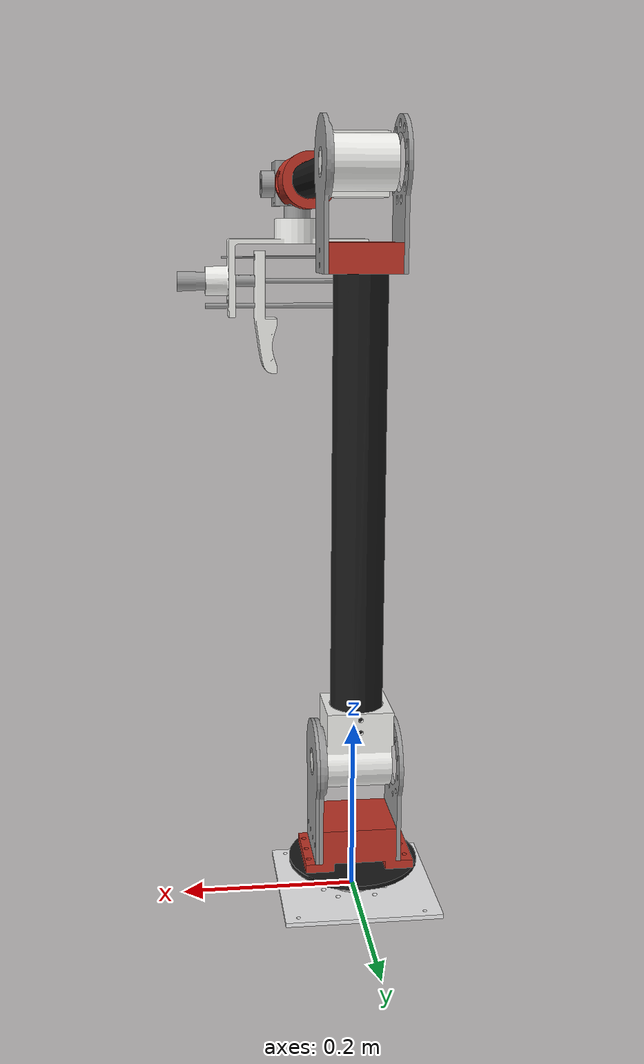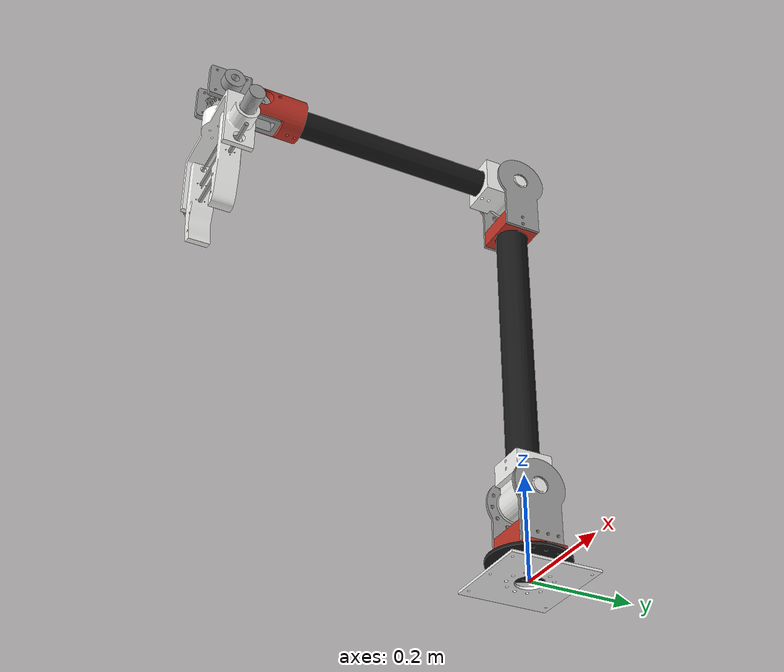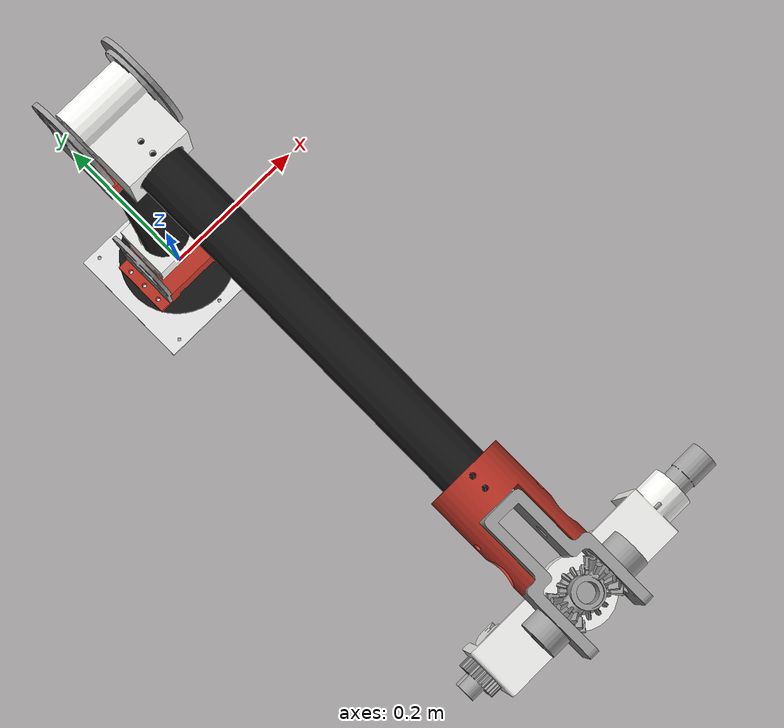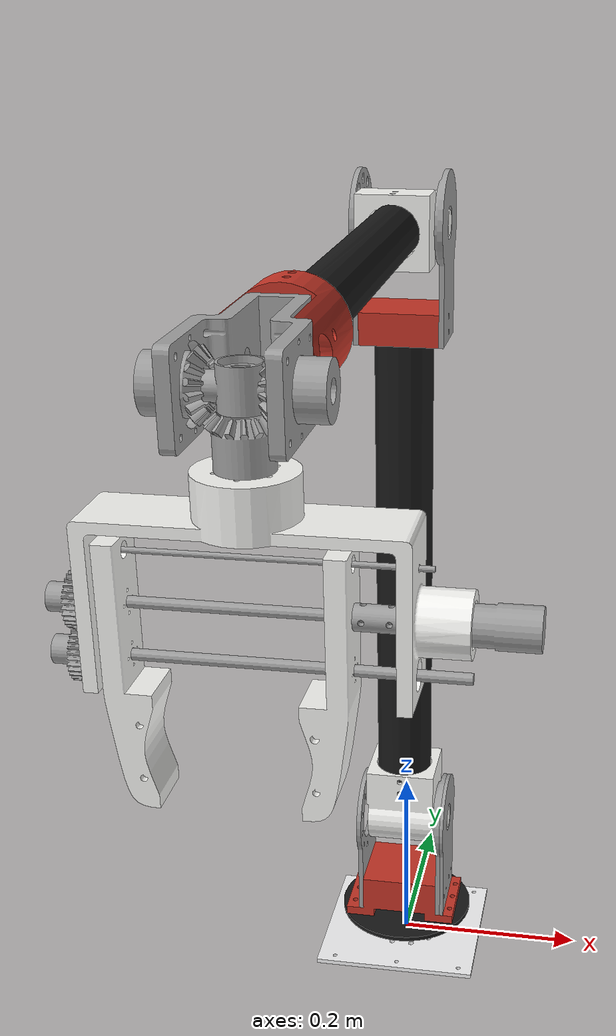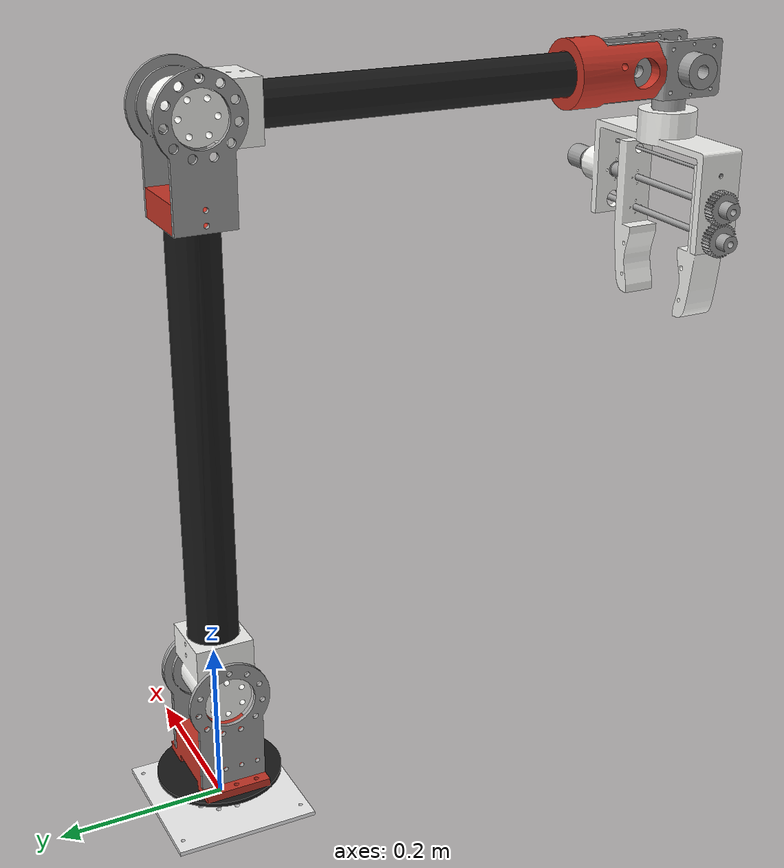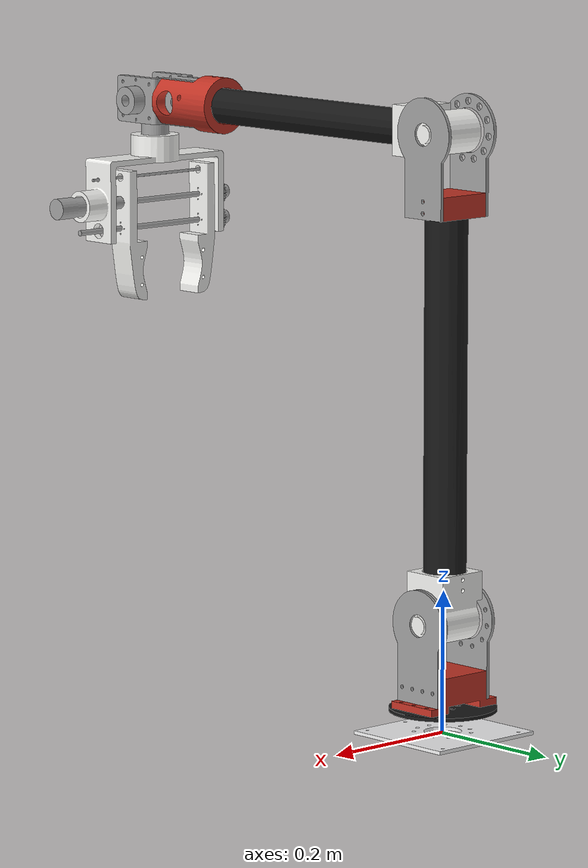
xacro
<?xml version="1.0"?>
<robot xmlns:xacro="http://www.ros.org/wiki/xacro" name="newmanip_description">
    <xacro:arg name="initial_positions_file" default="initial_positions.yaml" />

    <!-- Import newmanip_description urdf file -->
    <xacro:include filename="$(find newmanip_description)/urdf/new_manipulator_urdf.urdf" />

    <!-- Import control_xacro -->
    <xacro:include filename="newmanip_description.ros2_control.xacro" />

    <xacro:newmanip_description_ros2_control name="FakeSystem" initial_positions_file="$(arg initial_positions_file)"/>

</robot>

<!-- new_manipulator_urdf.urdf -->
<robot name="newmanip_description">

  <link name="base_link"/>
  <joint name="base_to_base_plate" type="fixed">
    <parent link="base_link"/>
    <child link="rigid_base_plate"/>
    <origin xyz="0 0 0" rpy="0 0 0"/>
  </joint>

  <link name="rigid_base_plate">
    <inertial>
      <origin xyz="-0.00224854905210758 -2.22044604925031E-16 -1.11022302462516E-16" rpy="0 0 0" />
      <mass value="0.139707136084498" />
      <inertia ixx="0.000362153855961995" ixy="-1.86445498629699E-19" ixz="6.69074444268395E-18" iyy="0.000407966760717313" iyz="-2.52141086441536E-18" izz="0.000769538503612289" />
    </inertial>
    <visual>
      <origin xyz="0 0 0" rpy="0 0 0" />
      <geometry>
        <mesh filename="package://newmanip_description/meshes/rigid_base_plate.STL" />
      </geometry>
      <material name="">
        <color rgba="0.96078431372549 0.96078431372549 0.964705882352941 1" />
      </material>
    </visual>
    <collision>
      <origin xyz="0 0 0" rpy="0 0 0" />
      <geometry>
        <mesh filename="package://newmanip_description/meshes/rigid_base_plate.STL" />
      </geometry>
    </collision>
  </link>
  <link name="manipulator_base_plate">
    <inertial>
      <origin xyz="1.22886286373358E-05 1.11022302462516E-16 1.11022302462516E-16" rpy="0 0 0" />
      <mass value="0.0862820052494155" />
      <inertia ixx="0.000123802300064541" ixy="-2.58850064594347E-19" ixz="1.72303453251338E-18" iyy="0.000121470538062705" iyz="-8.61839529210846E-19" izz="0.00024491332977204" />
    </inertial>
    <visual>
      <origin xyz="0 0 0" rpy="0 0 0" />
      <geometry>
        <mesh filename="package://newmanip_description/meshes/manipulator_base_plate.STL" />
      </geometry>
      <material name="">
        <color rgba="0.0980392156862745 0.0980392156862745 0.0980392156862745 1" />
      </material>
    </visual>
    <collision>
      <origin xyz="0 0 0" rpy="0 0 0" />
      <geometry>
        <mesh filename="package://newmanip_description/meshes/manipulator_base_plate.STL" />
      </geometry>
    </collision>
  </link>
  <joint name="manipulaotr_base_plate_j_base_plate" type="revolute">
    <origin xyz="0 0 0.035" rpy="0 0 0" />
    <parent link="rigid_base_plate" />
    <child link="manipulator_base_plate" />
    <axis xyz="0 0 1" />
    <limit lower="0" upper="6.28" effort="5" velocity="300" />
  </joint>
  <link name="link1_base_connector">
    <inertial>
      <origin xyz="-0.00250683727782453 7.21501936895574E-06 0.0284780963824992" rpy="0 0 0" />
      <mass value="0.3101493034797" />
      <inertia ixx="0.000225770602403096" ixy="-1.53108847872636E-11" ixz="-4.44856677198981E-08" iyy="0.000328764440352947" iyz="-9.00769232145696E-09" izz="0.000429446427553537" />
    </inertial>
    <visual>
      <origin xyz="0 0 0" rpy="0 0 0" />
      <geometry>
        <mesh filename="package://newmanip_description/meshes/link1_base_connector.STL" />
      </geometry>
      <material name="">
        <color rgba="0.768627450980392 0.207843137254902 0.152941176470588 1" />
      </material>
    </visual>
    <collision>
      <origin xyz="0 0 0" rpy="0 0 0" />
      <geometry>
        <mesh filename="package://newmanip_description/meshes/link1_base_connector.STL" />
      </geometry>
    </collision>
  </link>
  <joint name="link1_base_connector_j_base_plate" type="fixed">
    <origin xyz="0 0 0" rpy="0 0 0" />
    <parent link="manipulator_base_plate" />
    <child link="link1_base_connector" />
    <axis xyz="0 0 0" />
  </joint>
  <link name="link1_motor_holder">
    <inertial>
      <origin xyz="-5.01820807130571E-14 0.0102439720821413 0.0484515092209075" rpy="0 0 0" />
      <mass value="0.0472357381724757" />
      <inertia ixx="0.000129972797985735" ixy="7.57422861461972E-17" ixz="5.0252648576416E-14" iyy="9.69913160495726E-05" iyz="-4.58591894562E-09" izz="3.3178297068652E-05" />
    </inertial>
    <visual>
      <origin xyz="0 0 0" rpy="0 0 0" />
      <geometry>
        <mesh filename="package://newmanip_description/meshes/link1_motor_holder.STL" />
      </geometry>
      <material name="">
        <color rgba="0.627450980392157 0.627450980392157 0.627450980392157 1" />
      </material>
    </visual>
    <collision>
      <origin xyz="0 0 0" rpy="0 0 0" />
      <geometry>
        <mesh filename="package://newmanip_description/meshes/link1_motor_holder.STL" />
      </geometry>
    </collision>
  </link>
  <joint name="link1_motor_holder_j_link1_base_connector" type="fixed">
    <origin xyz="-0.0475 -0.010235 0.0325" rpy="0 0 0" />
    <parent link="link1_base_connector" />
    <child link="link1_motor_holder" />
    <axis xyz="0 0 0" />
  </joint>
  <link name="link1_holder_plate1">
    <inertial>
      <origin xyz="-7.59478585334872E-05 0.0302376768181887 0.0532016958918762" rpy="0 0 0" />
      <mass value="0.0534173325460069" />
      <inertia ixx="0.000146682680726942" ixy="-1.06020409384096E-11" ixz="1.49286094539467E-07" iyy="0.000109985302453133" iyz="7.03231800187629E-09" izz="3.69574692009433E-05" />
    </inertial>
    <visual>
      <origin xyz="0 0 0" rpy="0 0 0" />
      <geometry>
        <mesh filename="package://newmanip_description/meshes/link1_holder_plate1.STL" />
      </geometry>
      <material name="">
        <color rgba="0.627450980392157 0.627450980392157 0.627450980392157 1" />
      </material>
    </visual>
    <collision>
      <origin xyz="0 0 0" rpy="0 0 0" />
      <geometry>
        <mesh filename="package://newmanip_description/meshes/link1_holder_plate1.STL" />
      </geometry>
    </collision>
  </link>
  <joint name="link1_holder_plate1_j_link1_base_connector" type="fixed">
    <origin xyz="0.0425 -0.030235 0.0325" rpy="0 0 0" />
    <parent link="link1_base_connector" />
    <child link="link1_holder_plate1" />
    <axis xyz="0 0 0" />
  </joint>
  <link name="link1_holder_plate_2">
    <inertial>
      <origin xyz="6.66133814775094E-16 0.0302374993702151 0.057469700426654" rpy="0 0 0" />
      <mass value="0.048340470503894" />
      <inertia ixx="0.000126171826754474" ixy="1.06018937826447E-19" ixz="-1.40627336671772E-18" iyy="9.57171643871991E-05" iyz="6.11742086252551E-09" izz="3.05835702886188E-05" />
    </inertial>
    <visual>
      <origin xyz="0 0 0" rpy="0 0 0" />
      <geometry>
        <mesh filename="package://newmanip_description/meshes/link1_holder_plate_2.STL" />
      </geometry>
      <material name="">
        <color rgba="0.627450980392157 0.627450980392157 0.627450980392157 1" />
      </material>
    </visual>
    <collision>
      <origin xyz="0 0 0" rpy="0 0 0" />
      <geometry>
        <mesh filename="package://newmanip_description/meshes/link1_holder_plate_2.STL" />
      </geometry>
    </collision>
  </link>
  <joint name="link1_holder_plate2_j_plate1" type="fixed">
    <origin xyz="0.047 -0.030235 0.0325" rpy="0 0 0" />
    <parent link="link1_base_connector" />
    <child link="link1_holder_plate_2" />
    <axis xyz="0 0 0" />
  </joint>
  <link name="link1_bottom">
    <inertial>
      <origin xyz="-0.043858301946271 2.53706144981436E-09 0.0175036982186831" rpy="0 0 0" />
      <mass value="0.33776487197569" />
      <inertia ixx="0.00033772543614853" ixy="-3.46909757097291E-12" ixz="5.12404937468018E-06" iyy="0.000417922135939936" iyz="1.10059853231461E-11" izz="0.0003075355761408" />
    </inertial>
    <visual>
      <origin xyz="0 0 0" rpy="0 0 0" />
      <geometry>
        <mesh filename="package://newmanip_description/meshes/link1_bottom.STL" />
      </geometry>
      <material name="">
        <color rgba="0.964705882352941 0.964705882352941 0.952941176470588 1" />
      </material>
    </visual>
    <collision>
      <origin xyz="0 0 0" rpy="0 0 0" />
      <geometry>
        <mesh filename="package://newmanip_description/meshes/link1_bottom.STL" />
      </geometry>
    </collision>
  </link>
  <joint name="lin1_bottom_j_motor_holder_plate2" type="revolute">
    <origin xyz="-0.004775 0.030235 0.09" rpy="0 0 0" />
    <parent link="link1_holder_plate_2" />
    <child link="link1_bottom" />
    <axis xyz="-1 0 0" />
    <limit lower="-1.0" upper="0.0" effort="5" velocity="300" />
  </joint>
  <link name="link1">
    <inertial>
      <origin xyz="-5.39581868075345E-09 -1.69612222045146E-08 0.260067885294572" rpy="0 0 0" />
      <mass value="1.16262072100872" />
      <inertia ixx="0.0294764717399224" ixy="2.64070289134653E-08" ixz="3.02264641415134E-09" iyy="0.0294766138223382" iyz="-6.05581113367684E-09" izz="0.000654113236446206" />
    </inertial>
    <visual>
      <origin xyz="0 0 0" rpy="0 0 0" />
      <geometry>
        <mesh filename="package://newmanip_description/meshes/link1.STL" />
      </geometry>
      <material name="">
        <color rgba="0.0980392156862745 0.0980392156862745 0.0980392156862745 1" />
      </material>
    </visual>
    <collision>
      <origin xyz="0 0 0" rpy="0 0 0" />
      <geometry>
        <mesh filename="package://newmanip_description/meshes/link1.STL" />
      </geometry>
    </collision>
  </link>
  <joint name="link1_j_link1_bottom" type="fixed">
    <origin xyz="-0.044725 0 0.055" rpy="0 0 0" />
    <parent link="link1_bottom" />
    <child link="link1" />
    <axis xyz="0 0 0" />
  </joint>
  <link name="link1_end_part">
    <inertial>
      <origin xyz="3.49700294943744E-07 -5.36573157017273E-08 0.0025745156955117" rpy="0 0 0" />
      <mass value="0.0887935549462749" />
      <inertia ixx="6.05870122823914E-05" ixy="-1.20673426212271E-11" ixz="1.34987864310752E-11" iyy="8.18529027888766E-05" iyz="-3.93645552324886E-13" izz="0.000124952192875935" />
    </inertial>
    <visual>
      <origin xyz="0 0 0" rpy="0 0 0" />
      <geometry>
        <mesh filename="package://newmanip_description/meshes/link1_end_part.STL" />
      </geometry>
      <material name="">
        <color rgba="0.768627450980392 0.207843137254902 0.152941176470588 1" />
      </material>
    </visual>
    <collision>
      <origin xyz="0 0 0" rpy="0 0 0" />
      <geometry>
        <mesh filename="package://newmanip_description/meshes/link1_end_part.STL" />
      </geometry>
    </collision>
  </link>
  <joint name="link1_end_part_j_link1" type="fixed">
    <origin xyz="0 0 0.51997" rpy="0 0 0" />
    <parent link="link1" />
    <child link="link1_end_part" />
    <axis xyz="0 0 0" />
  </joint>
  <link name="link2_holder_plate">
    <inertial>
      <origin xyz="-2.01196429752137E-05 7.42303459810856E-08 0.0581704451095113" rpy="0 0 0" />
      <mass value="0.0587346240548899" />
      <inertia ixx="0.00016111589583289" ixy="1.06567062915207E-12" ixz="3.89385339679009E-08" iyy="0.000126130278788689" iyz="1.31250923946133E-11" izz="3.52646621936093E-05" />
    </inertial>
    <visual>
      <origin xyz="0 0 0" rpy="0 0 0" />
      <geometry>
        <mesh filename="package://newmanip_description/meshes/link2_holder_plate.STL" />
      </geometry>
      <material name="">
        <color rgba="0.627450980392157 0.627450980392157 0.627450980392157 1" />
      </material>
    </visual>
    <collision>
      <origin xyz="0 0 0" rpy="0 0 0" />
      <geometry>
        <mesh filename="package://newmanip_description/meshes/link2_holder_plate.STL" />
      </geometry>
    </collision>
  </link>
  <joint name="link2_holder_plate_j_link1_endpart" type="fixed">
    <origin xyz="0.0425 0 0.0094039" rpy="0 0 0" />
    <parent link="link1_end_part" />
    <child link="link2_holder_plate" />
    <axis xyz="0 0 0" />
  </joint>
  <link name="link2_base_holder">
    <inertial>
      <origin xyz="-0.0396701193420625 -0.0198734327497784 -2.57427568595148E-07" rpy="0 0 0" />
      <mass value="0.334451491213555" />
      <inertia ixx="0.000352606274559091" ixy="-3.68775904581431E-06" ixz="9.85102576858203E-13" iyy="0.000277425037448963" iyz="-1.92982150605619E-11" izz="0.000399176202587073" />
    </inertial>
    <visual>
      <origin xyz="0 0 0" rpy="0 0 0" />
      <geometry>
        <mesh filename="package://newmanip_description/meshes/link2_base_holder.STL" />
      </geometry>
      <material name="">
        <color rgba="0.964705882352941 0.964705882352941 0.952941176470588 1" />
      </material>
    </visual>
    <collision>
      <origin xyz="0 0 0" rpy="0 0 0" />
      <geometry>
        <mesh filename="package://newmanip_description/meshes/link2_base_holder.STL" />
      </geometry>
    </collision>
  </link>
  <joint name="link2_base_holder_j_link2_holder_plate" type="revolute">
    <origin xyz="-0.0022749 0 0.091125" rpy="0 0 0" />
    <parent link="link2_holder_plate" />
    <child link="link2_base_holder" />
    <axis xyz="-1 0 0" />
    <limit lower="-0.85" upper="0.85" effort="5" velocity="300" />
  </joint>
  <link name="link2">
    <inertial>
      <origin xyz="-3.2036842068095E-09 -0.210020758728246 3.06611558364978E-09" rpy="0 0 0" />
      <mass value="0.738793048590477" />
      <inertia ixx="0.0125138808760153" ixy="2.81531282534996E-11" ixz="2.36623911843703E-11" iyy="0.000267941556387362" iyz="4.69560000685452E-11" izz="0.0125149718463103" />
    </inertial>
    <visual>
      <origin xyz="0 0 0" rpy="0 0 0" />
      <geometry>
        <mesh filename="package://newmanip_description/meshes/link2.STL" />
      </geometry>
      <material name="">
        <color rgba="0.0980392156862745 0.0980392156862745 0.0980392156862745 1" />
      </material>
    </visual>
    <collision>
      <origin xyz="0 0 0" rpy="0 0 0" />
      <geometry>
        <mesh filename="package://newmanip_description/meshes/link2.STL" />
      </geometry>
    </collision>
  </link>
  <joint name="link2_j_link2_bottom" type="fixed">
    <origin xyz="-0.040225 -0.055 0" rpy="0 0 0" />
    <parent link="link2_base_holder" />
    <child link="link2" />
    <axis xyz="0 0 0" />
  </joint>
  <link name="link3_holder">
    <inertial>
      <origin xyz="1.04092800823352E-07 -0.0212951513452504 -7.80283795864811E-05" rpy="0 0 0" />
      <mass value="0.188164308449144" />
      <inertia ixx="0.000263210714322179" ixy="1.19504902122293E-09" ixz="4.12755228449986E-11" iyy="0.000217666445518385" iyz="-2.0692789254073E-07" izz="0.000312157989750956" />
    </inertial>
    <visual>
      <origin xyz="0 0 0" rpy="0 0 0" />
      <geometry>
        <mesh filename="package://newmanip_description/meshes/link3_holder.STL" />
      </geometry>
      <material name="">
        <color rgba="0.768627450980392 0.207843137254902 0.152941176470588 1" />
      </material>
    </visual>
    <collision>
      <origin xyz="0 0 0" rpy="0 0 0" />
      <geometry>
        <mesh filename="package://newmanip_description/meshes/link3_holder.STL" />
      </geometry>
    </collision>
  </link>
  <joint name="link3_holder_j_link2" type="fixed">
    <origin xyz="0 -0.41558 0" rpy="0 0 0" />
    <parent link="link2" />
    <child link="link3_holder" />
    <axis xyz="0 0 0" />
  </joint>
  <link name="link3">
    <inertial>
      <origin xyz="-0.0169999999422197 -0.01892736028304 -6.04970303303975E-05" rpy="0 0 0" />
      <mass value="0.186401761983701" />
      <inertia ixx="0.00041649103061218" ixy="3.34702334402905E-13" ixz="-3.13694565292869E-11" iyy="0.000184673919396029" iyz="-1.00161394749398E-06" izz="0.000448406474476473" />
    </inertial>
    <visual>
      <origin xyz="0 0 0" rpy="0 0 0" />
      <geometry>
        <mesh filename="package://newmanip_description/meshes/link3.STL" />
      </geometry>
      <material name="">
        <color rgba="0.627450980392157 0.627450980392157 0.627450980392157 1" />
      </material>
    </visual>
    <collision>
      <origin xyz="0 0 0" rpy="0 0 0" />
      <geometry>
        <mesh filename="package://newmanip_description/meshes/link3.STL" />
      </geometry>
    </collision>
  </link>
  <joint name="link3_j_link3_holder" type="fixed">
    <origin xyz="0.017 -0.065388 0" rpy="0 0 0" />
    <parent link="link3_holder" />
    <child link="link3" />
    <axis xyz="0 0 0" />
  </joint>
  <link name="bevel_2_1">
    <inertial>
      <origin xyz="-0.00198768283371575 4.61148896846453E-11 -6.90960622051762E-11" rpy="0 0 0" />
      <mass value="0.0392764387724245" />
      <inertia ixx="9.38677349018228E-06" ixy="3.28897900019598E-14" ixz="-2.48284275580556E-14" iyy="9.32983228228972E-06" iyz="-4.95150376085659E-16" izz="9.32983227817736E-06" />
    </inertial>
    <visual>
      <origin xyz="0 0 0" rpy="0 0 0" />
      <geometry>
        <mesh filename="package://newmanip_description/meshes/bevel_2_1.STL" />
      </geometry>
      <material name="">
        <color rgba="0.627450980392157 0.627450980392157 0.627450980392157 1" />
      </material>
    </visual>
    <collision>
      <origin xyz="0 0 0" rpy="0 0 0" />
      <geometry>
        <mesh filename="package://newmanip_description/meshes/bevel_2_1.STL" />
      </geometry>
    </collision>
  </link>
  <joint name="bevel_2_1_j_link3" type="revolute">
    <origin xyz="0.024311 -0.064641 -0.00015997" rpy="0 0 0" />
    <parent link="link3" />
    <child link="bevel_2_1" />
    <axis xyz="-1 0 0" />
    <limit lower="-0.2" upper="3.14" effort="5" velocity="300" />
  </joint>
  <link name="link3_coupler">
    <inertial>
      <origin xyz="-5.82388929926125E-05 6.31850608294737E-05 0.00122932281260923" rpy="0 0 0" />
      <mass value="0.0167222714991286" />
      <inertia ixx="2.02973783240983E-06" ixy="1.06542374992194E-10" ixz="5.07256991235962E-10" iyy="3.61055369765391E-06" iyz="-5.45281201822252E-10" izz="3.89529398167193E-06" />
    </inertial>
    <visual>
      <origin xyz="0 0 0" rpy="0 0 0" />
      <geometry>
        <mesh filename="package://newmanip_description/meshes/link3_coupler.STL" />
      </geometry>
      <material name="">
        <color rgba="0.627450980392157 0.627450980392157 0.627450980392157 1" />
      </material>
    </visual>
    <collision>
      <origin xyz="0 0 0" rpy="0 0 0" />
      <geometry>
        <mesh filename="package://newmanip_description/meshes/link3_coupler.STL" />
      </geometry>
    </collision>
  </link>
  <joint name="link3_coupler_j_bevel_2_1" type="fixed">
    <origin xyz="-0.039112 -0.00018086 -0.0017479" rpy="0 0 0" />
    <parent link="bevel_2_1" />
    <child link="link3_coupler" />
    <axis xyz="0 0 -1" />
    <limit lower="0" upper="-3.14" effort="5" velocity="300" />
  </joint>
  <link name="bevel1">
    <inertial>
      <origin xyz="-7.70539188010844E-12 -1.26052945859101E-10 0.00346916742513037" rpy="0 0 0" />
      <mass value="0.0389255764607632" />
      <inertia ixx="7.4012826126844E-06" ixy="1.27861267831252E-15" ixz="8.75309317586799E-15" iyy="7.40128260914493E-06" iyz="8.08425734285388E-14" izz="8.03729543400708E-06" />
    </inertial>
    <visual>
      <origin xyz="0 0 0" rpy="0 0 0" />
      <geometry>
        <mesh filename="package://newmanip_description/meshes/bevel1.STL" />
      </geometry>
      <material name="">
        <color rgba="0.627450980392157 0.627450980392157 0.627450980392157 1" />
      </material>
    </visual>
    <collision>
      <origin xyz="0 0 0" rpy="0 0 0" />
      <geometry>
        <mesh filename="package://newmanip_description/meshes/bevel1.STL" />
      </geometry>
    </collision>
  </link>
  <joint name="bevel1_j_link3_coupler" type="revolute">
    <origin xyz="0 0 -0.037478" rpy="0 0 0" />
    <parent link="link3_coupler" />
    <child link="bevel1" />
    <axis xyz="0 0 -1" />
    <limit lower="0" upper="6.28" effort="5" velocity="300" />
  </joint>
  <link name="gripper">
    <inertial>
      <origin xyz="0.00947390082512833 -3.16404236144763E-10 -0.0326962287167527" rpy="0 0 0" />
      <mass value="0.341464156501707" />
      <inertia ixx="0.000604244616606819" ixy="1.38650343886313E-12" ixz="0.000143274518301015" iyy="0.00239586527325236" iyz="-3.96987708690604E-12" izz="0.00198563943102793" />
    </inertial>
    <visual>
      <origin xyz="0 0 0" rpy="0 0 0" />
      <geometry>
        <mesh filename="package://newmanip_description/meshes/gripper.STL" />
      </geometry>
      <material name="">
        <color rgba="0.964705882352941 0.964705882352941 0.952941176470588 1" />
      </material>
    </visual>
    <collision>
      <origin xyz="0 0 0" rpy="0 0 0" />
      <geometry>
        <mesh filename="package://newmanip_description/meshes/gripper.STL" />
      </geometry>
    </collision>
  </link>
  <joint name="gripper_j_bevel1" type="fixed">
    <origin xyz="0 0 -0.029432" rpy="0 0 0" />
    <parent link="bevel1" />
    <child link="gripper" />
    <axis xyz="0 0 0" />
    <limit lower="0" upper="6.28" effort="5" velocity="300" />
  </joint>
  <link name="ss_rod">
    <inertial>
      <origin xyz="0.1075 7.105427357601E-15 5.88520343569598E-11" rpy="0 0 0" />
      <mass value="0.00282743338823081" />
      <inertia ixx="5.65486677646163E-09" ixy="-4.26106075205144E-20" ixz="-6.52806601260074E-15" iyy="1.1931062039987E-05" iyz="-2.33254048897856E-29" izz="1.1931062039987E-05" />
    </inertial>
    <visual>
      <origin xyz="0 0 0" rpy="0 0 0" />
      <geometry>
        <mesh filename="package://newmanip_description/meshes/ss_rod.STL" />
      </geometry>
      <material name="">
        <color rgba="0.627450980392157 0.627450980392157 0.627450980392157 1" />
      </material>
    </visual>
    <collision>
      <origin xyz="0 0 0" rpy="0 0 0" />
      <geometry>
        <mesh filename="package://newmanip_description/meshes/ss_rod.STL" />
      </geometry>
    </collision>
  </link>
  <joint name="ss_rod_j_gripper" type="fixed">
    <origin xyz="-0.1025 0 -0.041068" rpy="0 0 0" />
    <parent link="gripper" />
    <child link="ss_rod" />
    <axis xyz="0 0 0" />
  </joint>
  <link name="spurgear1">
    <inertial>
      <origin xyz="0.01073269105099 -6.21724893790088E-15 5.86419801607008E-12" rpy="0 0 0" />
      <mass value="0.017095911870029" />
      <inertia ixx="2.6664867878511E-06" ixy="1.85129689989352E-19" ixz="2.79946888523974E-16" iyy="2.15564617596662E-06" iyz="-1.23291483113597E-15" izz="2.15564618008356E-06" />
    </inertial>
    <visual>
      <origin xyz="0 0 0" rpy="0 0 0" />
      <geometry>
        <mesh filename="package://newmanip_description/meshes/spurgear1.STL" />
      </geometry>
      <material name="">
        <color rgba="0.627450980392157 0.627450980392157 0.627450980392157 1" />
      </material>
    </visual>
    <collision>
      <origin xyz="0 0 0" rpy="0 0 0" />
      <geometry>
        <mesh filename="package://newmanip_description/meshes/spurgear1.STL" />
      </geometry>
    </collision>
  </link>
  <joint name="spur_gear1_j_gripper" type="fixed">
    <origin xyz="-0.1277 0 -0.077068" rpy="0 0 0" />
    <parent link="gripper" />
    <child link="spurgear1" />
    <axis xyz="-1 0 0" />
    <limit lower="0" upper="6.28" effort="5" velocity="300" />
  </joint>
  <link name="threded_rod_up">
    <inertial>
      <origin xyz="0 2.22044604925031E-16 2.22044604925031E-16" rpy="0 0 0" />
      <mass value="0.0121489228511336" />
      <inertia ixx="9.39627397423046E-08" ixy="-2.25918058139595E-19" ixz="-3.461185052434E-14" iyy="6.33226212195255E-05" iyz="-1.23669450529155E-28" izz="6.33226212195255E-05" />
    </inertial>
    <visual>
      <origin xyz="0 0 0" rpy="0 0 0" />
      <geometry>
        <mesh filename="package://newmanip_description/meshes/threded_rod_up.STL" />
      </geometry>
      <material name="">
        <color rgba="0.627450980392157 0.627450980392157 0.627450980392157 1" />
      </material>
    </visual>
    <collision>
      <origin xyz="0 0 0" rpy="0 0 0" />
      <geometry>
        <mesh filename="package://newmanip_description/meshes/threded_rod_up.STL" />
      </geometry>
    </collision>
  </link>
  <joint name="threded_jod_j_gripper" type="fixed">
    <origin xyz="0.0175 0 -0.077068" rpy="0 0 0" />
    <parent link="gripper" />
    <child link="threded_rod_up" />
    <axis xyz="-1 0 0" />
    <limit lower="0" upper="0" effort="0" velocity="0" />
  </joint>
  <link name="claw1">
    <inertial>
      <origin xyz="0.00575880746643986 -3.50262773762822E-06 -0.0565127254748121" rpy="0 0 0" />
      <mass value="0.134410672799192" />
      <inertia ixx="0.000371952908783262" ixy="5.5004465774372E-09" ixz="3.30601034472799E-05" iyy="0.000362575120952862" iyz="-2.02998931758679E-09" izz="2.71292076973183E-05" />
    </inertial>
    <visual>
      <origin xyz="0 0 0" rpy="0 0 0" />
      <geometry>
        <mesh filename="package://newmanip_description/meshes/claw1.STL" />
      </geometry>
      <material name="">
        <color rgba="0.964705882352941 0.964705882352941 0.952941176470588 1" />
      </material>
    </visual>
    <collision>
      <origin xyz="0 0 0" rpy="0 0 0" />
      <geometry>
        <mesh filename="package://newmanip_description/meshes/claw1.STL" />
      </geometry>
    </collision>
  </link>
  <joint name="claw1_j_threded_rod_up" type="prismatic">
    <origin xyz="-0.1075 0 0" rpy="0 0 0" />
    <parent link="threded_rod_up" />
    <child link="claw1" />
    <axis xyz="-1 0 0" />
    <limit lower="-0.05" upper="0.05" effort="5" velocity="300" />
    <mimic joint="claw2_j_threded_rod_down" multiplier="-1.0" offset="0.0"/>
  </joint>
  <link name="shaft_coupler">
    <inertial>
      <origin xyz="-3.34353145170496E-09 -2.21470920447331E-06 2.20177151222245E-06" rpy="0 0 0" />
      <mass value="0.00642699869056132" />
      <inertia ixx="2.90757461608025E-07" ixy="1.22521912944497E-13" ixz="9.59361453548064E-14" iyy="6.22257888518885E-07" iyz="-1.54341930965944E-10" izz="6.22256087053553E-07" />
    </inertial>
    <visual>
      <origin xyz="0 0 0" rpy="0 0 0" />
      <geometry>
        <mesh filename="package://newmanip_description/meshes/shaft_coupler.STL" />
      </geometry>
      <material name="">
        <color rgba="0.627450980392157 0.627450980392157 0.627450980392157 1" />
      </material>
    </visual>
    <collision>
      <origin xyz="0 0 0" rpy="0 0 0" />
      <geometry>
        <mesh filename="package://newmanip_description/meshes/shaft_coupler.STL" />
      </geometry>
    </collision>
  </link>
  <joint name="shaft_coupller_j_gripper" type="fixed">
    <origin xyz="0.081 0.00015741 -0.077225" rpy="0 0 0" />
    <parent link="gripper" />
    <child link="shaft_coupler" />
    <axis xyz="0 0 0" />
  </joint>
  <link name="motor">
    <inertial>
      <origin xyz="0.0211379514351595 6.88338275267597E-15 1.29814665295047E-05" rpy="0 0 0" />
      <mass value="0.0558864492200027" />
      <inertia ixx="5.79372255972707E-06" ixy="-1.11395473946062E-19" ixz="-2.38707164672831E-08" iyy="3.78491735617808E-05" iyz="1.20433601788769E-21" izz="3.78610357361111E-05" />
    </inertial>
    <visual>
      <origin xyz="0 0 0" rpy="0 0 0" />
      <geometry>
        <mesh filename="package://newmanip_description/meshes/motor.STL" />
      </geometry>
      <material name="">
        <color rgba="0.627450980392157 0.627450980392157 0.627450980392157 1" />
      </material>
    </visual>
    <collision>
      <origin xyz="0 0 0" rpy="0 0 0" />
      <geometry>
        <mesh filename="package://newmanip_description/meshes/motor.STL" />
      </geometry>
    </collision>
  </link>
  <joint name="motor_j_gripper" type="fixed">
    <origin xyz="0.1225 0 -0.077068" rpy="0 0 0" />
    <parent link="gripper" />
    <child link="motor" />
    <axis xyz="0 0 0" />
  </joint>
  <link name="spur_gear2">
    <inertial>
      <origin xyz="0.0107326910509882 -2.88657986402541E-15 5.86020121318143E-12" rpy="0 0 0" />
      <mass value="0.0170959118700088" />
      <inertia ixx="2.6664867878468E-06" ixy="8.3549543536952E-20" ixz="2.80075169711451E-16" iyy="2.15564617575233E-06" iyz="-7.75564904852259E-16" izz="2.15564618029305E-06" />
    </inertial>
    <visual>
      <origin xyz="0 0 0" rpy="0 0 0" />
      <geometry>
        <mesh filename="package://newmanip_description/meshes/spur_gear2.STL" />
      </geometry>
      <material name="">
        <color rgba="0.627450980392157 0.627450980392157 0.627450980392157 1" />
      </material>
    </visual>
    <collision>
      <origin xyz="0 0 0" rpy="0 0 0" />
      <geometry>
        <mesh filename="package://newmanip_description/meshes/spur_gear2.STL" />
      </geometry>
    </collision>
  </link>
  <joint name="spur_gear2_j_gripper" type="fixed">
    <origin xyz="-0.1277 0 -0.11487" rpy="0 0 0" />
    <parent link="gripper" />
    <child link="spur_gear2" />
    <axis xyz="-1 0 0" />
    <limit lower="0" upper="6.28" effort="5" velocity="300" />
  </joint>
  <link name="threded_rod_down">
    <inertial>
      <origin xyz="4.44089209850063E-16 0 -4.44089209850063E-16" rpy="0 0 0" />
      <mass value="0.0121489228511336" />
      <inertia ixx="9.39627397423046E-08" ixy="-2.25918058139595E-19" ixz="-3.461185052434E-14" iyy="6.33226212195255E-05" iyz="-1.23669450529155E-28" izz="6.33226212195255E-05" />
    </inertial>
    <visual>
      <origin xyz="0 0 0" rpy="0 0 0" />
      <geometry>
        <mesh filename="package://newmanip_description/meshes/threded_rod_down.STL" />
      </geometry>
      <material name="">
        <color rgba="0.627450980392157 0.627450980392157 0.627450980392157 1" />
      </material>
    </visual>
    <collision>
      <origin xyz="0 0 0" rpy="0 0 0" />
      <geometry>
        <mesh filename="package://newmanip_description/meshes/threded_rod_down.STL" />
      </geometry>
    </collision>
  </link>
  <joint name="threded_rod_down_j_gripper" type="fixed">
    <origin xyz="0.0175 0 -0.11487" rpy="0 0 0" />
    <parent link="gripper" />
    <child link="threded_rod_down" />
    <axis xyz="-1 0 0" />
    <limit lower="0" upper="0" effort="0" velocity="0" />
  </joint>
  <link name="claw2">
    <inertial>
      <origin xyz="-0.00575880742509649 3.50262773896048E-06 -0.0190127254811181" rpy="0 0 0" />
      <mass value="0.134410672799188" />
      <inertia ixx="0.000371952908855641" ixy="5.50044657641857E-09" ixz="-3.30601030697604E-05" iyy="0.000362575120952851" iyz="2.02998932900778E-09" izz="2.71292076249286E-05" />
    </inertial>
    <visual>
      <origin xyz="0 0 0" rpy="0 0 0" />
      <geometry>
        <mesh filename="package://newmanip_description/meshes/claw2.STL" />
      </geometry>
      <material name="">
        <color rgba="0.964705882352941 0.964705882352941 0.952941176470588 1" />
      </material>
    </visual>
    <collision>
      <origin xyz="0 0 0" rpy="0 0 0" />
      <geometry>
        <mesh filename="package://newmanip_description/meshes/claw2.STL" />
      </geometry>
    </collision>
  </link>
  <joint name="claw2_j_threded_rod_down" type="prismatic">
    <origin xyz="0.041 0 0.000299" rpy="0 0 0" />
    <parent link="threded_rod_down" />
    <child link="claw2" />
    <axis xyz="-1 0 0" />
    <limit lower="0" upper="0.04" effort="5" velocity="0.03" />
  </joint>
  <link name="bevel_2_2">
    <inertial>
      <origin xyz="0.00198768283371975 8.5286000484075E-11 8.57451887270599E-11" rpy="0 0 0" />
      <mass value="0.0392764387724469" />
      <inertia ixx="9.38677349018948E-06" ixy="-5.1670018267452E-14" ixz="-4.17556208174296E-14" iyy="9.32983228157335E-06" iyz="-1.61680580364253E-15" izz="9.3298322789013E-06" />
    </inertial>
    <visual>
      <origin xyz="0 0 0" rpy="0 0 0" />
      <geometry>
        <mesh filename="package://newmanip_description/meshes/bevel_2_2.STL" />
      </geometry>
      <material name="">
        <color rgba="0.627450980392157 0.627450980392157 0.627450980392157 1" />
      </material>
    </visual>
    <collision>
      <origin xyz="0 0 0" rpy="0 0 0" />
      <geometry>
        <mesh filename="package://newmanip_description/meshes/bevel_2_2.STL" />
      </geometry>
    </collision>
  </link>
  <joint name="bevel_2_2_j_link3" type="revolute">
    <origin xyz="-0.058311 -0.064641 -0.00015997" rpy="0 0 0" />
    <parent link="link3" />
    <child link="bevel_2_2" />
    <axis xyz="-1 0 0" />
    <limit lower="-0.2" upper="3.14" effort="5" velocity="300" />
    <mimic joint="bevel_2_1_j_link3" multiplier="1.0" offset="0.0" />
  </joint>
  <link name="link2_motor_holder">
    <inertial>
      <origin xyz="-2.56259458097929E-11 8.04152539002345E-08 0.046877021806319" rpy="0 0 0" />
      <mass value="0.043743804004434" />
      <inertia ixx="0.00012449983939246" ixy="3.41065754728543E-18" ixz="5.29237705775377E-14" iyy="9.68442144708896E-05" iyz="-2.03364458424434E-11" izz="2.78378906768312E-05" />
    </inertial>
    <visual>
      <origin xyz="0 0 0" rpy="0 0 0" />
      <geometry>
        <mesh filename="package://newmanip_description/meshes/link2_motor_holder.STL" />
      </geometry>
      <material name="">
        <color rgba="0.627450980392157 0.627450980392157 0.627450980392157 1" />
      </material>
    </visual>
    <collision>
      <origin xyz="0 0 0" rpy="0 0 0" />
      <geometry>
        <mesh filename="package://newmanip_description/meshes/link2_motor_holder.STL" />
      </geometry>
    </collision>
  </link>
  <joint name="link2_motor_holder_j_link1_endpart" type="fixed">
    <origin xyz="-0.0425 0 0.0094039" rpy="0 0 0" />
    <parent link="link1_end_part" />
    <child link="link2_motor_holder" />
    <axis xyz="0 0 0" />
  </joint>
</robot>
